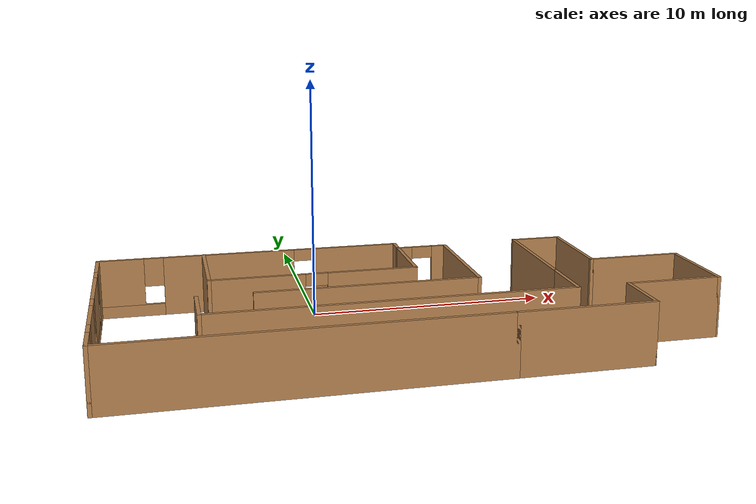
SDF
<?xml version='1.0'?>
<sdf version='1.6'>
  <model name='building'>
    <pose frame=''>3.175 -3.655 0 0 -0 0</pose>
    <link name='Wall_0'>
      <collision name='Wall_0_Collision'>
        <geometry>
          <box>
            <size>9 0.15 2.5</size>
          </box>
        </geometry>
        <pose frame=''>0 0 1.25 0 -0 0</pose>
      </collision>
      <visual name='Wall_0_Visual'>
        <pose frame=''>0 0 1.25 0 -0 0</pose>
        <geometry>
          <box>
            <size>9 0.15 2.5</size>
          </box>
        </geometry>
        <material>
          <script>
            <uri>file://media/materials/scripts/gazebo.material</uri>
            <name>Gazebo/Wood</name>
          </script>
          <ambient>0.760784 0.662745 0.627451 1</ambient>
        </material>
        <meta>
          <layer>0</layer>
        </meta>
      </visual>
      <pose frame=''>-1.65 -0.675 0 0 -0 0</pose>
    </link>
    <link name='Wall_1'>
      <collision name='Wall_1_Collision'>
        <geometry>
          <box>
            <size>5.25 0.15 2.5</size>
          </box>
        </geometry>
        <pose frame=''>0 0 1.25 0 -0 0</pose>
      </collision>
      <visual name='Wall_1_Visual'>
        <pose frame=''>0 0 1.25 0 -0 0</pose>
        <geometry>
          <box>
            <size>5.25 0.15 2.5</size>
          </box>
        </geometry>
        <material>
          <script>
            <uri>file://media/materials/scripts/gazebo.material</uri>
            <name>Gazebo/Wood</name>
          </script>
          <ambient>0.760784 0.662745 0.627451 1</ambient>
        </material>
        <meta>
          <layer>0</layer>
        </meta>
      </visual>
      <pose frame=''>2.775 1.875 0 0 -0 1.5708</pose>
    </link>
    <link name='Wall_11'>
      <pose frame=''>-3.5 5.175 0 0 -0 0</pose>
      <visual name='Wall_11_Visual_0'>
        <pose frame=''>-2.28098 0 1.25 0 -0 0</pose>
        <geometry>
          <box>
            <size>3.93805 0.15 2.5</size>
          </box>
        </geometry>
        <material>
          <script>
            <uri>file://media/materials/scripts/gazebo.material</uri>
            <name>Gazebo/Wood</name>
          </script>
          <ambient>1 1 1 1</ambient>
        </material>
        <meta>
          <layer>0</layer>
        </meta>
      </visual>
      <collision name='Wall_11_Collision_0'>
        <geometry>
          <box>
            <size>3.93805 0.15 2.5</size>
          </box>
        </geometry>
        <pose frame=''>-2.28098 0 1.25 0 -0 0</pose>
      </collision>
      <visual name='Wall_11_Visual_1'>
        <pose frame=''>2.41902 0 1.25 0 -0 0</pose>
        <geometry>
          <box>
            <size>3.66195 0.15 2.5</size>
          </box>
        </geometry>
        <material>
          <script>
            <uri>file://media/materials/scripts/gazebo.material</uri>
            <name>Gazebo/Wood</name>
          </script>
          <ambient>1 1 1 1</ambient>
        </material>
        <meta>
          <layer>0</layer>
        </meta>
      </visual>
      <collision name='Wall_11_Collision_1'>
        <geometry>
          <box>
            <size>3.66195 0.15 2.5</size>
          </box>
        </geometry>
        <pose frame=''>2.41902 0 1.25 0 -0 0</pose>
      </collision>
      <visual name='Wall_11_Visual_2'>
        <pose frame=''>0.138047 0 2.25 0 -0 0</pose>
        <geometry>
          <box>
            <size>0.9 0.15 0.5</size>
          </box>
        </geometry>
        <material>
          <script>
            <uri>file://media/materials/scripts/gazebo.material</uri>
            <name>Gazebo/Wood</name>
          </script>
          <ambient>1 1 1 1</ambient>
        </material>
        <meta>
          <layer>0</layer>
        </meta>
      </visual>
      <collision name='Wall_11_Collision_2'>
        <geometry>
          <box>
            <size>0.9 0.15 0.5</size>
          </box>
        </geometry>
        <pose frame=''>0.138047 0 2.25 0 -0 0</pose>
      </collision>
    </link>
    <link name='Wall_12'>
      <collision name='Wall_12_Collision'>
        <geometry>
          <box>
            <size>0.9 0.15 2.5</size>
          </box>
        </geometry>
        <pose frame=''>0 0 1.25 0 -0 0</pose>
      </collision>
      <visual name='Wall_12_Visual'>
        <pose frame=''>0 0 1.25 0 -0 0</pose>
        <geometry>
          <box>
            <size>0.9 0.15 2.5</size>
          </box>
        </geometry>
        <material>
          <script>
            <uri>file://media/materials/scripts/gazebo.material</uri>
            <name>Gazebo/Wood</name>
          </script>
          <ambient>1 1 1 1</ambient>
        </material>
        <meta>
          <layer>0</layer>
        </meta>
      </visual>
      <pose frame=''>0.675001 4.8 0 0 0 -1.5708</pose>
    </link>
    <link name='Wall_14'>
      <collision name='Wall_14_Collision'>
        <geometry>
          <box>
            <size>5.5 0.15 2.5</size>
          </box>
        </geometry>
        <pose frame=''>0 0 1.25 0 -0 0</pose>
      </collision>
      <visual name='Wall_14_Visual'>
        <pose frame=''>0 0 1.25 0 -0 0</pose>
        <geometry>
          <box>
            <size>5.5 0.15 2.5</size>
          </box>
        </geometry>
        <material>
          <script>
            <uri>file://media/materials/scripts/gazebo.material</uri>
            <name>Gazebo/Wood</name>
          </script>
          <ambient>1 1 1 1</ambient>
        </material>
        <meta>
          <layer>0</layer>
        </meta>
      </visual>
      <pose frame=''>5.5 -5.175 0 0 -0 0</pose>
    </link>
    <link name='Wall_15'>
      <collision name='Wall_15_Collision'>
        <geometry>
          <box>
            <size>2.5 0.15 2.5</size>
          </box>
        </geometry>
        <pose frame=''>0 0 1.25 0 -0 0</pose>
      </collision>
      <visual name='Wall_15_Visual'>
        <pose frame=''>0 0 1.25 0 -0 0</pose>
        <geometry>
          <box>
            <size>2.5 0.15 2.5</size>
          </box>
        </geometry>
        <material>
          <script>
            <uri>file://media/materials/scripts/gazebo.material</uri>
            <name>Gazebo/Wood</name>
          </script>
          <ambient>1 1 1 1</ambient>
        </material>
        <meta>
          <layer>0</layer>
        </meta>
      </visual>
      <pose frame=''>8.175 -4 0 0 -0 1.5708</pose>
    </link>
    <link name='Wall_16'>
      <collision name='Wall_16_Collision'>
        <geometry>
          <box>
            <size>4 0.15 2.5</size>
          </box>
        </geometry>
        <pose frame=''>0 0 1.25 0 -0 0</pose>
      </collision>
      <visual name='Wall_16_Visual'>
        <pose frame=''>0 0 1.25 0 -0 0</pose>
        <geometry>
          <box>
            <size>4 0.15 2.5</size>
          </box>
        </geometry>
        <material>
          <script>
            <uri>file://media/materials/scripts/gazebo.material</uri>
            <name>Gazebo/Wood</name>
          </script>
          <ambient>1 1 1 1</ambient>
        </material>
        <meta>
          <layer>0</layer>
        </meta>
      </visual>
      <pose frame=''>10.1 -2.825 0 0 -0 0</pose>
    </link>
    <link name='Wall_17'>
      <collision name='Wall_17_Collision'>
        <geometry>
          <box>
            <size>3.75 0.15 2.5</size>
          </box>
        </geometry>
        <pose frame=''>0 0 1.25 0 -0 0</pose>
      </collision>
      <visual name='Wall_17_Visual'>
        <pose frame=''>0 0 1.25 0 -0 0</pose>
        <geometry>
          <box>
            <size>3.75 0.15 2.5</size>
          </box>
        </geometry>
        <material>
          <script>
            <uri>file://media/materials/scripts/gazebo.material</uri>
            <name>Gazebo/Wood</name>
          </script>
          <ambient>1 1 1 1</ambient>
        </material>
        <meta>
          <layer>0</layer>
        </meta>
      </visual>
      <pose frame=''>12.025 -1.025 0 0 -0 1.5708</pose>
    </link>
    <link name='Wall_18'>
      <collision name='Wall_18_Collision'>
        <geometry>
          <box>
            <size>4 0.15 2.5</size>
          </box>
        </geometry>
        <pose frame=''>0 0 1.25 0 -0 0</pose>
      </collision>
      <visual name='Wall_18_Visual'>
        <pose frame=''>0 0 1.25 0 -0 0</pose>
        <geometry>
          <box>
            <size>4 0.15 2.5</size>
          </box>
        </geometry>
        <material>
          <script>
            <uri>file://media/materials/scripts/gazebo.material</uri>
            <name>Gazebo/Wood</name>
          </script>
          <ambient>1 1 1 1</ambient>
        </material>
        <meta>
          <layer>0</layer>
        </meta>
      </visual>
      <pose frame=''>10.1 0.775 0 0 -0 3.14159</pose>
    </link>
    <link name='Wall_19'>
      <collision name='Wall_19_Collision'>
        <geometry>
          <box>
            <size>4 0.15 2.5</size>
          </box>
        </geometry>
        <pose frame=''>0 0 1.25 0 -0 0</pose>
      </collision>
      <visual name='Wall_19_Visual'>
        <pose frame=''>0 0 1.25 0 -0 0</pose>
        <geometry>
          <box>
            <size>4 0.15 2.5</size>
          </box>
        </geometry>
        <material>
          <script>
            <uri>file://media/materials/scripts/gazebo.material</uri>
            <name>Gazebo/Wood</name>
          </script>
          <ambient>1 1 1 1</ambient>
        </material>
        <meta>
          <layer>0</layer>
        </meta>
      </visual>
      <pose frame=''>8.175 2.7 0 0 -0 1.5708</pose>
    </link>
    <link name='Wall_2'>
      <pose frame=''>1.725 4.425 0 0 -0 3.14159</pose>
      <visual name='Wall_2_Visual_0'>
        <pose frame=''>-0.783012 0 1.25 0 -0 0</pose>
        <geometry>
          <box>
            <size>0.683975 0.15 2.5</size>
          </box>
        </geometry>
        <material>
          <script>
            <uri>file://media/materials/scripts/gazebo.material</uri>
            <name>Gazebo/Wood</name>
          </script>
          <ambient>1 1 1 1</ambient>
        </material>
        <meta>
          <layer>0</layer>
        </meta>
      </visual>
      <collision name='Wall_2_Collision_0'>
        <geometry>
          <box>
            <size>0.683975 0.15 2.5</size>
          </box>
        </geometry>
        <pose frame=''>-0.783012 0 1.25 0 -0 0</pose>
      </collision>
      <visual name='Wall_2_Visual_1'>
        <pose frame=''>0.791988 0 1.25 0 -0 0</pose>
        <geometry>
          <box>
            <size>0.666025 0.15 2.5</size>
          </box>
        </geometry>
        <material>
          <script>
            <uri>file://media/materials/scripts/gazebo.material</uri>
            <name>Gazebo/Wood</name>
          </script>
          <ambient>1 1 1 1</ambient>
        </material>
        <meta>
          <layer>0</layer>
        </meta>
      </visual>
      <collision name='Wall_2_Collision_1'>
        <geometry>
          <box>
            <size>0.666025 0.15 2.5</size>
          </box>
        </geometry>
        <pose frame=''>0.791988 0 1.25 0 -0 0</pose>
      </collision>
      <visual name='Wall_2_Visual_2'>
        <pose frame=''>0.008975 0 2.25 0 -0 0</pose>
        <geometry>
          <box>
            <size>0.9 0.15 0.5</size>
          </box>
        </geometry>
        <material>
          <script>
            <uri>file://media/materials/scripts/gazebo.material</uri>
            <name>Gazebo/Wood</name>
          </script>
          <ambient>1 1 1 1</ambient>
        </material>
        <meta>
          <layer>0</layer>
        </meta>
      </visual>
      <collision name='Wall_2_Collision_2'>
        <geometry>
          <box>
            <size>0.9 0.15 0.5</size>
          </box>
        </geometry>
        <pose frame=''>0.008975 0 2.25 0 -0 0</pose>
      </collision>
    </link>
    <link name='Wall_20'>
      <collision name='Wall_20_Collision'>
        <geometry>
          <box>
            <size>2.25 0.15 2.5</size>
          </box>
        </geometry>
        <pose frame=''>0 0 1.25 0 -0 0</pose>
      </collision>
      <visual name='Wall_20_Visual'>
        <pose frame=''>0 0 1.25 0 -0 0</pose>
        <geometry>
          <box>
            <size>2.25 0.15 2.5</size>
          </box>
        </geometry>
        <material>
          <script>
            <uri>file://media/materials/scripts/gazebo.material</uri>
            <name>Gazebo/Wood</name>
          </script>
          <ambient>1 1 1 1</ambient>
        </material>
        <meta>
          <layer>0</layer>
        </meta>
      </visual>
      <pose frame=''>7.125 4.625 0 0 -0 3.14159</pose>
    </link>
    <link name='Wall_21'>
      <collision name='Wall_21_Collision'>
        <geometry>
          <box>
            <size>5.25 0.15 2.5</size>
          </box>
        </geometry>
        <pose frame=''>0 0 1.25 0 -0 0</pose>
      </collision>
      <visual name='Wall_21_Visual'>
        <pose frame=''>0 0 1.25 0 -0 0</pose>
        <geometry>
          <box>
            <size>5.25 0.15 2.5</size>
          </box>
        </geometry>
        <material>
          <script>
            <uri>file://media/materials/scripts/gazebo.material</uri>
            <name>Gazebo/Wood</name>
          </script>
          <ambient>1 1 1 1</ambient>
        </material>
        <meta>
          <layer>0</layer>
        </meta>
      </visual>
      <pose frame=''>6.075 2.075 0 0 0 -1.5708</pose>
    </link>
    <link name='Wall_22'>
      <collision name='Wall_22_Collision'>
        <geometry>
          <box>
            <size>2.5 0.15 2.5</size>
          </box>
        </geometry>
        <pose frame=''>0 0 1.25 0 -0 0</pose>
      </collision>
      <visual name='Wall_22_Visual'>
        <pose frame=''>0 0 1.25 0 -0 0</pose>
        <geometry>
          <box>
            <size>2.5 0.15 2.5</size>
          </box>
        </geometry>
        <material>
          <script>
            <uri>file://media/materials/scripts/gazebo.material</uri>
            <name>Gazebo/Wood</name>
          </script>
          <ambient>1 1 1 1</ambient>
        </material>
        <meta>
          <layer>0</layer>
        </meta>
      </visual>
      <pose frame=''>6.075 -1.65 0 0 0 -1.5708</pose>
    </link>
    <link name='Wall_23'>
      <collision name='Wall_23_Collision'>
        <geometry>
          <box>
            <size>14.5 0.15 2.5</size>
          </box>
        </geometry>
        <pose frame=''>0 0 1.25 0 -0 0</pose>
      </collision>
      <visual name='Wall_23_Visual'>
        <pose frame=''>0 0 1.25 0 -0 0</pose>
        <geometry>
          <box>
            <size>14.5 0.15 2.5</size>
          </box>
        </geometry>
        <material>
          <script>
            <uri>file://media/materials/scripts/gazebo.material</uri>
            <name>Gazebo/Wood</name>
          </script>
          <ambient>1 1 1 1</ambient>
        </material>
        <meta>
          <layer>0</layer>
        </meta>
      </visual>
      <pose frame=''>-1.1 -2.825 0 0 -0 3.14159</pose>
    </link>
    <link name='Wall_24'>
      <collision name='Wall_24_Collision'>
        <geometry>
          <box>
            <size>2.25 0.15 2.5</size>
          </box>
        </geometry>
        <pose frame=''>0 0 1.25 0 -0 0</pose>
      </collision>
      <visual name='Wall_24_Visual'>
        <pose frame=''>0 0 1.25 0 -0 0</pose>
        <geometry>
          <box>
            <size>2.25 0.15 2.5</size>
          </box>
        </geometry>
        <material>
          <script>
            <uri>file://media/materials/scripts/gazebo.material</uri>
            <name>Gazebo/Wood</name>
          </script>
          <ambient>1 1 1 1</ambient>
        </material>
        <meta>
          <layer>0</layer>
        </meta>
      </visual>
      <pose frame=''>-8.275 -1.775 0 0 -0 1.5708</pose>
    </link>
    <link name='Wall_3'>
      <collision name='Wall_3_Collision'>
        <geometry>
          <box>
            <size>3.25 0.15 2.5</size>
          </box>
        </geometry>
        <pose frame=''>0 0 1.25 0 -0 0</pose>
      </collision>
      <visual name='Wall_3_Visual'>
        <pose frame=''>0 0 1.25 0 -0 0</pose>
        <geometry>
          <box>
            <size>3.25 0.15 2.5</size>
          </box>
        </geometry>
        <material>
          <script>
            <uri>file://media/materials/scripts/gazebo.material</uri>
            <name>Gazebo/Wood</name>
          </script>
          <ambient>1 1 1 1</ambient>
        </material>
        <meta>
          <layer>0</layer>
        </meta>
      </visual>
      <pose frame=''>0.675001 2.875 0 0 0 -1.5708</pose>
    </link>
    <link name='Wall_4'>
      <pose frame=''>-3.5 1.325 0 0 -0 3.14159</pose>
      <visual name='Wall_4_Visual_0'>
        <pose frame=''>-2.38843 0 1.25 0 -0 0</pose>
        <geometry>
          <box>
            <size>3.72313 0.15 2.5</size>
          </box>
        </geometry>
        <material>
          <script>
            <uri>file://media/materials/scripts/gazebo.material</uri>
            <name>Gazebo/Wood</name>
          </script>
          <ambient>0.760784 0.662745 0.627451 1</ambient>
        </material>
        <meta>
          <layer>0</layer>
        </meta>
      </visual>
      <collision name='Wall_4_Collision_0'>
        <geometry>
          <box>
            <size>3.72313 0.15 2.5</size>
          </box>
        </geometry>
        <pose frame=''>-2.38843 0 1.25 0 -0 0</pose>
      </collision>
      <visual name='Wall_4_Visual_1'>
        <pose frame=''>2.31157 0 1.25 0 -0 0</pose>
        <geometry>
          <box>
            <size>3.87687 0.15 2.5</size>
          </box>
        </geometry>
        <material>
          <script>
            <uri>file://media/materials/scripts/gazebo.material</uri>
            <name>Gazebo/Wood</name>
          </script>
          <ambient>0.760784 0.662745 0.627451 1</ambient>
        </material>
        <meta>
          <layer>0</layer>
        </meta>
      </visual>
      <collision name='Wall_4_Collision_1'>
        <geometry>
          <box>
            <size>3.87687 0.15 2.5</size>
          </box>
        </geometry>
        <pose frame=''>2.31157 0 1.25 0 -0 0</pose>
      </collision>
      <visual name='Wall_4_Visual_2'>
        <pose frame=''>-0.076867 0 2.25 0 -0 0</pose>
        <geometry>
          <box>
            <size>0.9 0.15 0.5</size>
          </box>
        </geometry>
        <material>
          <script>
            <uri>file://media/materials/scripts/gazebo.material</uri>
            <name>Gazebo/Wood</name>
          </script>
          <ambient>0.760784 0.662745 0.627451 1</ambient>
        </material>
        <meta>
          <layer>0</layer>
        </meta>
      </visual>
      <collision name='Wall_4_Collision_2'>
        <geometry>
          <box>
            <size>0.9 0.15 0.5</size>
          </box>
        </geometry>
        <pose frame=''>-0.076867 0 2.25 0 -0 0</pose>
      </collision>
    </link>
    <link name='Wall_5'>
      <collision name='Wall_5_Collision'>
        <geometry>
          <box>
            <size>4 0.15 2.5</size>
          </box>
        </geometry>
        <pose frame=''>0 0 1.25 0 -0 0</pose>
      </collision>
      <visual name='Wall_5_Visual'>
        <pose frame=''>0 0 1.25 0 -0 0</pose>
        <geometry>
          <box>
            <size>4 0.15 2.5</size>
          </box>
        </geometry>
        <material>
          <script>
            <uri>file://media/materials/scripts/gazebo.material</uri>
            <name>Gazebo/Wood</name>
          </script>
          <ambient>1 1 1 1</ambient>
        </material>
        <meta>
          <layer>0</layer>
        </meta>
      </visual>
      <pose frame=''>-7.675 3.25 0 0 -0 1.5708</pose>
    </link>
    <link name='Wall_6'>
      <pose frame=''>-9.85 5.175 0 0 -0 3.14159</pose>
      <visual name='Wall_6_Visual_0'>
        <pose frame=''>-1.37234 0 1.25 0 -0 0</pose>
        <geometry>
          <box>
            <size>1.75531 0.15 2.5</size>
          </box>
        </geometry>
        <material>
          <script>
            <uri>file://media/materials/scripts/gazebo.material</uri>
            <name>Gazebo/Wood</name>
          </script>
          <ambient>1 1 1 1</ambient>
        </material>
        <meta>
          <layer>0</layer>
        </meta>
      </visual>
      <collision name='Wall_6_Collision_0'>
        <geometry>
          <box>
            <size>1.75531 0.15 2.5</size>
          </box>
        </geometry>
        <pose frame=''>-1.37234 0 1.25 0 -0 0</pose>
      </collision>
      <visual name='Wall_6_Visual_1'>
        <pose frame=''>0.877655 0 0.25 0 -0 0</pose>
        <geometry>
          <box>
            <size>2.74469 0.15 0.5</size>
          </box>
        </geometry>
        <material>
          <script>
            <uri>file://media/materials/scripts/gazebo.material</uri>
            <name>Gazebo/Wood</name>
          </script>
          <ambient>1 1 1 1</ambient>
        </material>
        <meta>
          <layer>0</layer>
        </meta>
      </visual>
      <collision name='Wall_6_Collision_1'>
        <geometry>
          <box>
            <size>2.74469 0.15 0.5</size>
          </box>
        </geometry>
        <pose frame=''>0.877655 0 0.25 0 -0 0</pose>
      </collision>
      <visual name='Wall_6_Visual_2'>
        <pose frame=''>1.27765 0 1.5 0 -0 0</pose>
        <geometry>
          <box>
            <size>1.94469 0.15 2</size>
          </box>
        </geometry>
        <material>
          <script>
            <uri>file://media/materials/scripts/gazebo.material</uri>
            <name>Gazebo/Wood</name>
          </script>
          <ambient>1 1 1 1</ambient>
        </material>
        <meta>
          <layer>0</layer>
        </meta>
      </visual>
      <collision name='Wall_6_Collision_2'>
        <geometry>
          <box>
            <size>1.94469 0.15 2</size>
          </box>
        </geometry>
        <pose frame=''>1.27765 0 1.5 0 -0 0</pose>
      </collision>
      <visual name='Wall_6_Visual_3'>
        <pose frame=''>-0.09469 0 1.9 0 -0 0</pose>
        <geometry>
          <box>
            <size>0.8 0.15 1.2</size>
          </box>
        </geometry>
        <material>
          <script>
            <uri>file://media/materials/scripts/gazebo.material</uri>
            <name>Gazebo/Wood</name>
          </script>
          <ambient>1 1 1 1</ambient>
        </material>
        <meta>
          <layer>0</layer>
        </meta>
      </visual>
      <collision name='Wall_6_Collision_3'>
        <geometry>
          <box>
            <size>0.8 0.15 1.2</size>
          </box>
        </geometry>
        <pose frame=''>-0.09469 0 1.9 0 -0 0</pose>
      </collision>
    </link>
    <link name='Wall_7'>
      <pose frame=''>-12.025 0 0 0 0 -1.5708</pose>
      <visual name='Wall_7_Visual_0'>
        <pose frame=''>-4.38665 0 1.25 0 -0 0</pose>
        <geometry>
          <box>
            <size>1.7267 0.15 2.5</size>
          </box>
        </geometry>
        <material>
          <script>
            <uri>file://media/materials/scripts/gazebo.material</uri>
            <name>Gazebo/Wood</name>
          </script>
          <ambient>1 1 1 1</ambient>
        </material>
        <meta>
          <layer>0</layer>
        </meta>
      </visual>
      <collision name='Wall_7_Collision_0'>
        <geometry>
          <box>
            <size>1.7267 0.15 2.5</size>
          </box>
        </geometry>
        <pose frame=''>-4.38665 0 1.25 0 -0 0</pose>
      </collision>
      <visual name='Wall_7_Visual_1'>
        <pose frame=''>0.863348 0 0.25 0 -0 0</pose>
        <geometry>
          <box>
            <size>8.77331 0.15 0.5</size>
          </box>
        </geometry>
        <material>
          <script>
            <uri>file://media/materials/scripts/gazebo.material</uri>
            <name>Gazebo/Wood</name>
          </script>
          <ambient>1 1 1 1</ambient>
        </material>
        <meta>
          <layer>0</layer>
        </meta>
      </visual>
      <collision name='Wall_7_Collision_1'>
        <geometry>
          <box>
            <size>8.77331 0.15 0.5</size>
          </box>
        </geometry>
        <pose frame=''>0.863348 0 0.25 0 -0 0</pose>
      </collision>
      <visual name='Wall_7_Visual_2'>
        <pose frame=''>-1.31848 0 1.5 0 -0 0</pose>
        <geometry>
          <box>
            <size>2.80965 0.15 2</size>
          </box>
        </geometry>
        <material>
          <script>
            <uri>file://media/materials/scripts/gazebo.material</uri>
            <name>Gazebo/Wood</name>
          </script>
          <ambient>1 1 1 1</ambient>
        </material>
        <meta>
          <layer>0</layer>
        </meta>
      </visual>
      <collision name='Wall_7_Collision_2'>
        <geometry>
          <box>
            <size>2.80965 0.15 2</size>
          </box>
        </geometry>
        <pose frame=''>-1.31848 0 1.5 0 -0 0</pose>
      </collision>
      <visual name='Wall_7_Visual_3'>
        <pose frame=''>1.98526 0 1.5 0 -0 0</pose>
        <geometry>
          <box>
            <size>2.19784 0.15 2</size>
          </box>
        </geometry>
        <material>
          <script>
            <uri>file://media/materials/scripts/gazebo.material</uri>
            <name>Gazebo/Wood</name>
          </script>
          <ambient>1 1 1 1</ambient>
        </material>
        <meta>
          <layer>0</layer>
        </meta>
      </visual>
      <collision name='Wall_7_Collision_3'>
        <geometry>
          <box>
            <size>2.19784 0.15 2</size>
          </box>
        </geometry>
        <pose frame=''>1.98526 0 1.5 0 -0 0</pose>
      </collision>
      <visual name='Wall_7_Visual_4'>
        <pose frame=''>4.56709 0 1.5 0 -0 0</pose>
        <geometry>
          <box>
            <size>1.36582 0.15 2</size>
          </box>
        </geometry>
        <material>
          <script>
            <uri>file://media/materials/scripts/gazebo.material</uri>
            <name>Gazebo/Wood</name>
          </script>
          <ambient>1 1 1 1</ambient>
        </material>
        <meta>
          <layer>0</layer>
        </meta>
      </visual>
      <collision name='Wall_7_Collision_4'>
        <geometry>
          <box>
            <size>1.36582 0.15 2</size>
          </box>
        </geometry>
        <pose frame=''>4.56709 0 1.5 0 -0 0</pose>
      </collision>
      <visual name='Wall_7_Visual_5'>
        <pose frame=''>-3.12331 0 1.9 0 -0 0</pose>
        <geometry>
          <box>
            <size>0.8 0.15 1.2</size>
          </box>
        </geometry>
        <material>
          <script>
            <uri>file://media/materials/scripts/gazebo.material</uri>
            <name>Gazebo/Wood</name>
          </script>
          <ambient>1 1 1 1</ambient>
        </material>
        <meta>
          <layer>0</layer>
        </meta>
      </visual>
      <collision name='Wall_7_Collision_5'>
        <geometry>
          <box>
            <size>0.8 0.15 1.2</size>
          </box>
        </geometry>
        <pose frame=''>-3.12331 0 1.9 0 -0 0</pose>
      </collision>
      <visual name='Wall_7_Visual_6'>
        <pose frame=''>0.486342 0 1.9 0 -0 0</pose>
        <geometry>
          <box>
            <size>0.8 0.15 1.2</size>
          </box>
        </geometry>
        <material>
          <script>
            <uri>file://media/materials/scripts/gazebo.material</uri>
            <name>Gazebo/Wood</name>
          </script>
          <ambient>1 1 1 1</ambient>
        </material>
        <meta>
          <layer>0</layer>
        </meta>
      </visual>
      <collision name='Wall_7_Collision_6'>
        <geometry>
          <box>
            <size>0.8 0.15 1.2</size>
          </box>
        </geometry>
        <pose frame=''>0.486342 0 1.9 0 -0 0</pose>
      </collision>
      <visual name='Wall_7_Visual_7'>
        <pose frame=''>3.48419 0 1.9 0 -0 0</pose>
        <geometry>
          <box>
            <size>0.8 0.15 1.2</size>
          </box>
        </geometry>
        <material>
          <script>
            <uri>file://media/materials/scripts/gazebo.material</uri>
            <name>Gazebo/Wood</name>
          </script>
          <ambient>1 1 1 1</ambient>
        </material>
        <meta>
          <layer>0</layer>
        </meta>
      </visual>
      <collision name='Wall_7_Collision_7'>
        <geometry>
          <box>
            <size>0.8 0.15 1.2</size>
          </box>
        </geometry>
        <pose frame=''>3.48419 0 1.9 0 -0 0</pose>
      </collision>
    </link>
    <link name='Wall_8'>
      <collision name='Wall_8_Collision'>
        <geometry>
          <box>
            <size>15 0.15 2.5</size>
          </box>
        </geometry>
        <pose frame=''>0 0 1.25 0 -0 0</pose>
      </collision>
      <visual name='Wall_8_Visual'>
        <pose frame=''>0 0 1.25 0 -0 0</pose>
        <geometry>
          <box>
            <size>15 0.15 2.5</size>
          </box>
        </geometry>
        <material>
          <script>
            <uri>file://media/materials/scripts/gazebo.material</uri>
            <name>Gazebo/Wood</name>
          </script>
          <ambient>1 1 1 1</ambient>
        </material>
        <meta>
          <layer>0</layer>
        </meta>
      </visual>
      <pose frame=''>-4.6 -5.175 0 0 -0 0</pose>
    </link>
    <static>1</static>
  </model>
</sdf>
